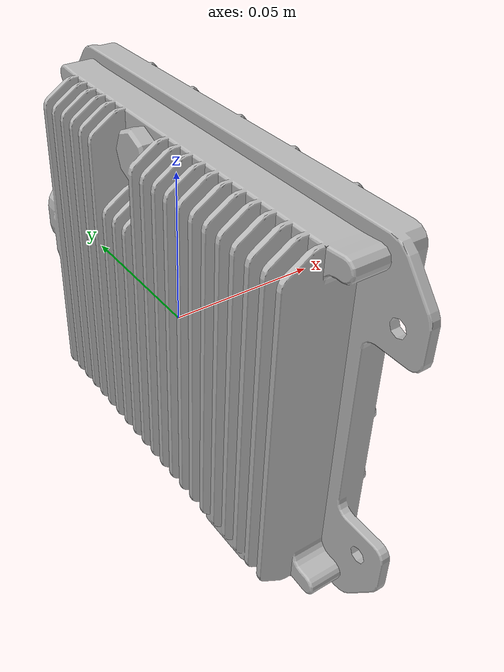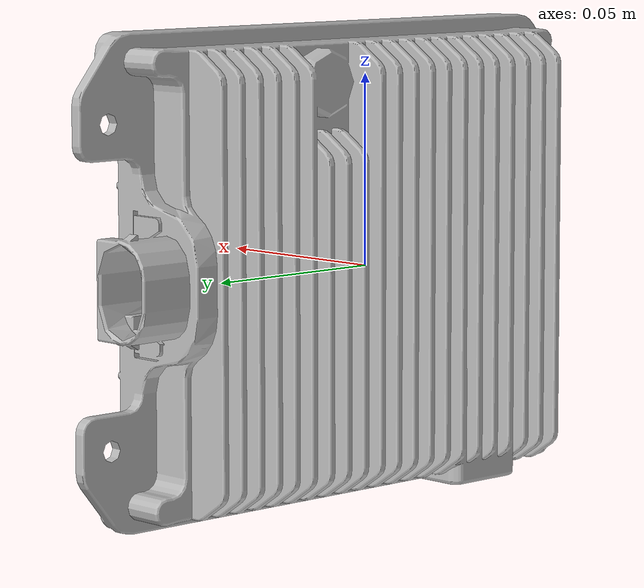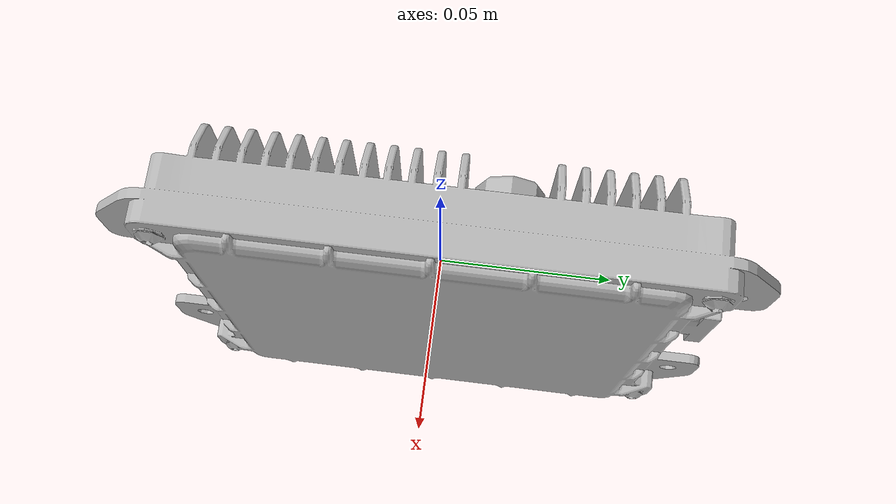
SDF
<?xml version="1.0" ?>
<sdf version="1.4">
  <model name='right_radar_sensor'>
    <pose>0.0 0.0 0.0 0.0 0.0 0.0</pose>
    <link name='link'>
      <inertial>
	<mass>0.01</mass>
	<inertia>
	  <ixx>0.001</ixx>
	  <ixy>0</ixy>
	  <ixz>0</ixz>
	  <iyy>0.001</iyy>
	  <iyz>0</iyz>
	  <izz>0.001</izz>
	</inertia>
      </inertial>
      <collision name='collision'>
	<geometry>
	  <box>
	    <size>0.01 0.05 0.05</size>
	  </box>
	</geometry>
	<max_contacts>10</max_contacts>
	<surface>
	  <contact>
	    <ode/>
	  </contact>
	  <bounce/>
	  <friction>
	    <ode/>
	  </friction>
	</surface>
      </collision>
      <visual name='visual'>
	<geometry>
	  <mesh>
	    <uri>model://right_radar_sensor/meshes/kanza79.stl</uri>
	  </mesh>
	</geometry>
      </visual>
      <sensor type="ray" name="range">
	<update_rate>10</update_rate>
	<visualize>true</visualize>
	<ray>
	  <scan>
	    <horizontal>
	      <samples>10</samples>
	      <resolution>1</resolution>
	      <min_angle>-0.7</min_angle>
	      <max_angle>0.7</max_angle>
	    </horizontal>
	  </scan>
	  <range>
	    <min>0.5</min> <!-- do not change (smaller values cause issues) -->
	    <max>5</max>   <!-- do not change (bigger values cause issues) -->
	    <resolution>0.01</resolution>
	  </range>
	</ray>
	<plugin name="range" filename="/home/nrotella/catkin_ws/devel/lib/libgazebo_radar_sensor_plugin.so">
	  <alwaysOn>true</alwaysOn>
	  <updateRate>10</updateRate>
	  <frameName>link</frameName>
	  <topicName>right_radar_sensor/data</topicName>
	</plugin>
      </sensor>
      <self_collide>0</self_collide>
      <kinematic>0</kinematic>
      <gravity>1</gravity>
    </link>
  </model>
</sdf>
